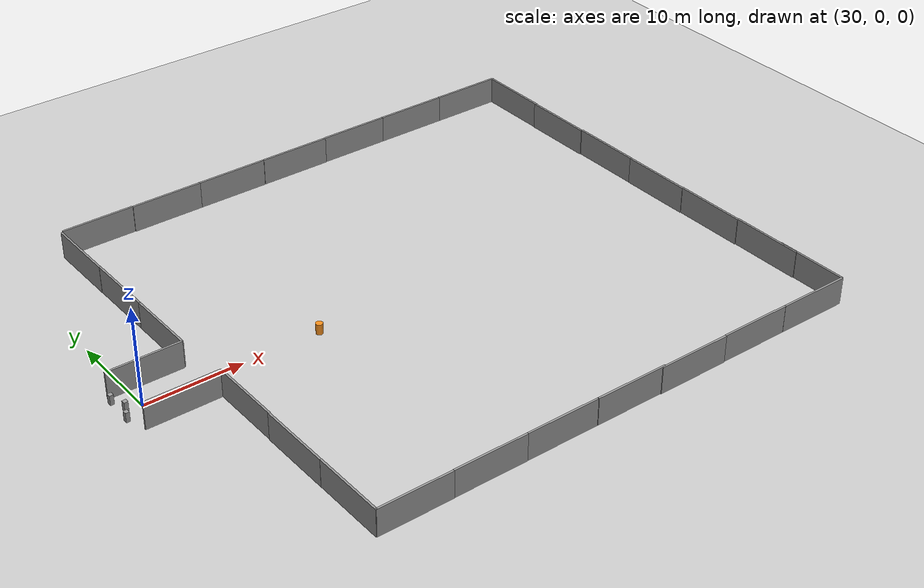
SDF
<sdf version="1.10">
 <world name="obstacle_corridor">
  <model name="ground_plane">
   <static>true</static>
   <link name="link">
    <collision name="collision">
     <geometry><plane><normal>0 0 1</normal><size>100 100</size></plane></geometry>
     <surface>
      <friction><ode><mu>1000</mu><mu2>1000</mu2><slip1>0</slip1><slip2>0</slip2></ode></friction>
     </surface>
    </collision>
    <visual name="visual">
     <cast_shadows>false</cast_shadows>
     <geometry><plane><normal>0 0 1</normal><size>100 100</size></plane></geometry>
     <material>
      <script><uri>file://media/materials/scripts/gazebo.material</uri><name>Gazebo/Grey</name></script>
     </material>
    </visual>
    <inertial>
     <mass>1</mass>
     <inertia><ixx>1</ixx><ixy>0</ixy><ixz>0</ixz><iyy>1</iyy><iyz>0</iyz><izz>1</izz></inertia>
    </inertial>
   </link>
  </model>
  <model name="unit_box_0_clone_5_clone_1_clone_29">
   <static>true</static>
   <pose>28.594028472900391 0.31436690688133329 0.49999848008155823 -1.00000011660313e-06 -2.0000002349963946e-06 -0.00040800002556328429</pose>
   <link name="link">
    <inertial>
     <mass>1</mass>
     <inertia>
      <ixx>0.16666700000000001</ixx>
      <ixy>0</ixy>
      <ixz>0</ixz>
      <iyy>0.16666700000000001</iyy>
      <iyz>0</iyz>
      <izz>0.16666700000000001</izz>
     </inertia>
    </inertial>
    <collision name="collision">
     <geometry><box><size>0.392878 0.42264299999999999 1</size></box></geometry>
    </collision>
    <visual name="visual">
     <geometry><box><size>0.392878 0.42264299999999999 1</size></box></geometry>
     <material>
      <script><name>Gazebo/Grey</name><uri>file://media/materials/scripts/gazebo.material</uri></script>
     </material>
    </visual>
   </link>
   <static>true</static>
  </model>
  <model name="unit_box_0_clone_5_clone_1_clone_34">
   <static>true</static>
   <pose>28.064 1.8845099999999999 0.50000100000000003 2.0000001398299962e-06 1.00000006995503e-06 -0.00045800003202473651</pose>
   <link name="link">
    <inertial>
     <mass>1</mass>
     <inertia>
      <ixx>0.16666700000000001</ixx>
      <ixy>0</ixy>
      <ixz>0</ixz>
      <iyy>0.16666700000000001</iyy>
      <iyz>0</iyz>
      <izz>0.16666700000000001</izz>
     </inertia>
    </inertial>
    <collision name="collision">
     <geometry><box><size>0.392878 0.42264299999999999 1</size></box></geometry>
    </collision>
    <visual name="visual">
     <geometry><box><size>0.392878 0.42264299999999999 1</size></box></geometry>
     <material>
      <script><name>Gazebo/Grey</name><uri>file://media/materials/scripts/gazebo.material</uri></script>
     </material>
    </visual>
   </link>
   <static>true</static>
  </model>
  <model name="unit_box_0_clone_5_clone_1_clone_35">
   <static>true</static>
   <pose>28 -1 0.50000100000000003 -2.0000001472693401e-06 -3.460829797922343e-17 -0.00047000003460829554</pose>
   <link name="link">
    <inertial>
     <mass>1</mass>
     <inertia>
      <ixx>0.16666700000000001</ixx>
      <ixy>0</ixy>
      <ixz>0</ixz>
      <iyy>0.16666700000000001</iyy>
      <iyz>0</iyz>
      <izz>0.16666700000000001</izz>
     </inertia>
    </inertial>
    <collision name="collision">
     <geometry><box><size>0.392878 0.42264299999999999 1</size></box></geometry>
    </collision>
    <visual name="visual">
     <geometry><box><size>0.392878 0.42264299999999999 1</size></box></geometry>
     <material>
      <script><name>Gazebo/Grey</name><uri>file://media/materials/scripts/gazebo.material</uri></script>
     </material>
    </visual>
   </link>
   <static>true</static>
  </model>
  <model name="grey_wall_clone_0_clone">
   <static>true</static>
   <link name="link">
    <pose>0 0 1.3999999999999999 0 0 0</pose>
    <collision name="collision">
     <geometry><box><size>7.5 0.20000000000000001 2.7999999999999998</size></box></geometry>
    </collision>
    <visual name="visual">
     <cast_shadows>false</cast_shadows>
     <geometry><box><size>7.5 0.20000000000000001 2.7999999999999998</size></box></geometry>
     <material>
      <script><name>Gazebo/Grey</name><uri>file://media/materials/scripts/gazebo.material</uri></script>
     </material>
    </visual>
    <velocity_decay><linear>0</linear><angular>0</angular></velocity_decay>
    <inertial>
     <mass>1</mass>
     <inertia><ixx>1</ixx><ixy>0</ixy><ixz>0</ixz><iyy>1</iyy><iyz>0</iyz><izz>1</izz></inertia>
    </inertial>
   </link>
   <pose>32.404098510742188 -2.893721342086792 0 0 0 0</pose>
   <static>true</static>
  </model>
  <model name="grey_wall_clone_0_clone_0">
   <static>true</static>
   <link name="link">
    <pose>0 0 1.3999999999999999 0 0 0</pose>
    <collision name="collision">
     <geometry><box><size>7.5 0.20000000000000001 2.7999999999999998</size></box></geometry>
    </collision>
    <visual name="visual">
     <cast_shadows>false</cast_shadows>
     <geometry><box><size>7.5 0.20000000000000001 2.7999999999999998</size></box></geometry>
     <material>
      <script><name>Gazebo/Grey</name><uri>file://media/materials/scripts/gazebo.material</uri></script>
     </material>
    </visual>
    <velocity_decay><linear>0</linear><angular>0</angular></velocity_decay>
    <inertial>
     <mass>1</mass>
     <inertia><ixx>1</ixx><ixy>0</ixy><ixz>0</ixz><iyy>1</iyy><iyz>0</iyz><izz>1</izz></inertia>
    </inertial>
   </link>
   <pose>31.877399444580078 2.6612694263458252 0 0 0 0</pose>
   <static>true</static>
  </model>
  <model name="grey_wall_clone_0_clone_clone_8">
   <static>true</static>
   <link name="link">
    <pose>0 0 1.3999999999999999 0 0 0</pose>
    <collision name="collision">
     <geometry><box><size>7.5 0.20000000000000001 2.7999999999999998</size></box></geometry>
    </collision>
    <visual name="visual">
     <cast_shadows>false</cast_shadows>
     <geometry><box><size>7.5 0.20000000000000001 2.7999999999999998</size></box></geometry>
     <material>
      <script><name>Gazebo/Grey</name><uri>file://media/materials/scripts/gazebo.material</uri></script>
     </material>
    </visual>
    <velocity_decay><linear>0</linear><angular>0</angular></velocity_decay>
    <inertial>
     <mass>1</mass>
     <inertia><ixx>1</ixx><ixy>0</ixy><ixz>0</ixz><iyy>1</iyy><iyz>0</iyz><izz>1</izz></inertia>
    </inertial>
   </link>
   <pose>39.402801513671875 25.036117553710938 0 0 0 0</pose>
   <static>true</static>
  </model>
  <model name="grey_wall_clone_0_clone_clone_8_clone">
   <static>true</static>
   <link name="link">
    <pose>0 0 1.3999999999999999 0 0 0</pose>
    <collision name="collision">
     <geometry><box><size>7.5 0.20000000000000001 2.7999999999999998</size></box></geometry>
    </collision>
    <visual name="visual">
     <cast_shadows>false</cast_shadows>
     <geometry><box><size>7.5 0.20000000000000001 2.7999999999999998</size></box></geometry>
     <material>
      <script><name>Gazebo/Grey</name><uri>file://media/materials/scripts/gazebo.material</uri></script>
     </material>
    </visual>
    <velocity_decay><linear>0</linear><angular>0</angular></velocity_decay>
    <inertial>
     <mass>1</mass>
     <inertia><ixx>1</ixx><ixy>0</ixy><ixz>0</ixz><iyy>1</iyy><iyz>0</iyz><izz>1</izz></inertia>
    </inertial>
   </link>
   <pose>36.184940338134773 -6.6376538276672372 0 0 0 -1.5642899622558528</pose>
   <static>true</static>
  </model>
  <model name="goal_marker">
   <static>true</static>
   <link name="link_0">
    <inertial>
     <mass>100</mass>
     <inertia>
      <ixx>0.37079600000000001</ixx>
      <ixy>0</ixy>
      <ixz>0</ixz>
      <iyy>0.37079600000000001</iyy>
      <iyz>0</iyz>
      <izz>0.0617961</izz>
     </inertia>
    </inertial>
    <visual name="visual">
     <geometry>
      <cylinder><radius>0.35165099999999999</radius><length>2.0202399999999998</length></cylinder>
     </geometry>
     <material>
      <lighting>true</lighting>
      <script><uri>file://media/materials/scripts/gazebo.material</uri><name>Gazebo/Orange</name></script>
      <ambient>1 0.600000024 0 1</ambient>
      <diffuse>1 0.600000024 0 1</diffuse>
      <specular>1 0.610000014 0 1</specular>
      <emissive>0 0 0 1</emissive>
      <shader type="vertex"><normal_map>__default__</normal_map></shader>
     </material>
    </visual>
    <collision name="collision">
     <geometry>
      <cylinder><radius>0.35165099999999999</radius><length>2.0202399999999998</length></cylinder>
     </geometry>
     <surface>
      <friction>
       <ode><mu>100</mu><mu2>100</mu2><fdir1>0 0 0</fdir1><slip1>0</slip1><slip2>0</slip2></ode>
       <torsional>
        <coefficient>1</coefficient>
        <patch_radius>0</patch_radius>
        <surface_radius>0</surface_radius>
        <use_patch_radius>true</use_patch_radius>
        <ode><slip>0</slip></ode>
       </torsional>
      </friction>
      <bounce><restitution_coefficient>1</restitution_coefficient><threshold>1000000</threshold></bounce>
      <contact>
       <collide_without_contact>false</collide_without_contact>
       <collide_without_contact_bitmask>1</collide_without_contact_bitmask>
       <collide_bitmask>1</collide_bitmask>
       <ode>
        <soft_cfm>0</soft_cfm>
        <soft_erp>0.20000000000000001</soft_erp>
        <kp>10000000000000</kp>
        <kd>1</kd>
        <max_vel>0.01</max_vel>
        <min_depth>0</min_depth>
       </ode>
       <bullet>
        <split_impulse>true</split_impulse>
        <split_impulse_penetration_threshold>-0.01</split_impulse_penetration_threshold>
        <soft_cfm>0</soft_cfm>
        <soft_erp>0.20000000000000001</soft_erp>
        <kp>10000000000000</kp>
        <kd>1</kd>
       </bullet>
      </contact>
     </surface>
    </collision>
   </link>
   <static>true</static>
   <pose>47.877099999999999 -0.12851199999999999 0 0 0 0</pose>
   <plugin filename="gz-sim-pose-publisher-system" name="gz::sim::systems::PosePublisher">
    <publish_model_pose>true</publish_model_pose>
    <use_pose_vector_msg>true</use_pose_vector_msg>
   </plugin>
  </model>
  <model name="grey_wall_clone_0_clone_clone_8_clone_1">
   <static>true</static>
   <link name="link">
    <pose>0 0 1.3999999999999999 0 0 0</pose>
    <collision name="collision">
     <geometry><box><size>7.5 0.20000000000000001 2.7999999999999998</size></box></geometry>
    </collision>
    <visual name="visual">
     <cast_shadows>false</cast_shadows>
     <geometry><box><size>7.5 0.20000000000000001 2.7999999999999998</size></box></geometry>
     <material>
      <script><name>Gazebo/Grey</name><uri>file://media/materials/scripts/gazebo.material</uri></script>
     </material>
    </visual>
    <velocity_decay><linear>0</linear><angular>0</angular></velocity_decay>
    <inertial>
     <mass>1</mass>
     <inertia><ixx>1</ixx><ixy>0</ixy><ixz>0</ixz><iyy>1</iyy><iyz>0</iyz><izz>1</izz></inertia>
    </inertial>
   </link>
   <pose>36.186372129434332 -14.042554693693814 0 0 0 -1.5642899622558528</pose>
   <static>true</static>
  </model>
  <model name="grey_wall_clone_0_clone_clone_8_clone_2">
   <static>true</static>
   <link name="link">
    <pose>0 0 1.3999999999999999 0 0 0</pose>
    <collision name="collision">
     <geometry><box><size>7.5 0.20000000000000001 2.7999999999999998</size></box></geometry>
    </collision>
    <visual name="visual">
     <cast_shadows>false</cast_shadows>
     <geometry><box><size>7.5 0.20000000000000001 2.7999999999999998</size></box></geometry>
     <material>
      <script><name>Gazebo/Grey</name><uri>file://media/materials/scripts/gazebo.material</uri></script>
     </material>
    </visual>
    <velocity_decay><linear>0</linear><angular>0</angular></velocity_decay>
    <inertial>
     <mass>1</mass>
     <inertia><ixx>1</ixx><ixy>0</ixy><ixz>0</ixz><iyy>1</iyy><iyz>0</iyz><izz>1</izz></inertia>
    </inertial>
   </link>
   <pose>36.24725069981757 -21.507783708370127 0 0 0 -1.5642899622558528</pose>
   <static>true</static>
  </model>
  <model name="grey_wall_clone_0_clone_clone_8_clone_3">
   <static>true</static>
   <link name="link">
    <pose>0 0 1.3999999999999999 0 0 0</pose>
    <collision name="collision">
     <geometry><box><size>7.5 0.20000000000000001 2.7999999999999998</size></box></geometry>
    </collision>
    <visual name="visual">
     <cast_shadows>false</cast_shadows>
     <geometry><box><size>7.5 0.20000000000000001 2.7999999999999998</size></box></geometry>
     <material>
      <script><name>Gazebo/Grey</name><uri>file://media/materials/scripts/gazebo.material</uri></script>
     </material>
    </visual>
    <velocity_decay><linear>0</linear><angular>0</angular></velocity_decay>
    <inertial>
     <mass>1</mass>
     <inertia><ixx>1</ixx><ixy>0</ixy><ixz>0</ixz><iyy>1</iyy><iyz>0</iyz><izz>1</izz></inertia>
    </inertial>
   </link>
   <pose>35.602382632889125 6.355323541477623 0 0 0 -1.5642899622558528</pose>
   <static>true</static>
  </model>
  <model name="grey_wall_clone_0_clone_clone_8_clone_4">
   <static>true</static>
   <link name="link">
    <pose>0 0 1.3999999999999999 0 0 0</pose>
    <collision name="collision">
     <geometry><box><size>7.5 0.20000000000000001 2.7999999999999998</size></box></geometry>
    </collision>
    <visual name="visual">
     <cast_shadows>false</cast_shadows>
     <geometry><box><size>7.5 0.20000000000000001 2.7999999999999998</size></box></geometry>
     <material>
      <script><name>Gazebo/Grey</name><uri>file://media/materials/scripts/gazebo.material</uri></script>
     </material>
    </visual>
    <velocity_decay><linear>0</linear><angular>0</angular></velocity_decay>
    <inertial>
     <mass>1</mass>
     <inertia><ixx>1</ixx><ixy>0</ixy><ixz>0</ixz><iyy>1</iyy><iyz>0</iyz><izz>1</izz></inertia>
    </inertial>
   </link>
   <pose>35.560343570276032 13.684559148123299 0 0 0 -1.5642899622558528</pose>
   <static>true</static>
  </model>
  <model name="grey_wall_clone_0_clone_clone_8_clone_5">
   <static>true</static>
   <link name="link">
    <pose>0 0 1.3999999999999999 0 0 0</pose>
    <collision name="collision">
     <geometry><box><size>7.5 0.20000000000000001 2.7999999999999998</size></box></geometry>
    </collision>
    <visual name="visual">
     <cast_shadows>false</cast_shadows>
     <geometry><box><size>7.5 0.20000000000000001 2.7999999999999998</size></box></geometry>
     <material>
      <script><name>Gazebo/Grey</name><uri>file://media/materials/scripts/gazebo.material</uri></script>
     </material>
    </visual>
    <velocity_decay><linear>0</linear><angular>0</angular></velocity_decay>
    <inertial>
     <mass>1</mass>
     <inertia><ixx>1</ixx><ixy>0</ixy><ixz>0</ixz><iyy>1</iyy><iyz>0</iyz><izz>1</izz></inertia>
    </inertial>
   </link>
   <pose>35.495215749278742 21.096955424359148 0 0 0 -1.5642899622558528</pose>
   <static>true</static>
  </model>
  <model name="grey_wall_clone_0_clone_clone_8_1">
   <static>true</static>
   <link name="link">
    <pose>0 0 1.3999999999999999 0 0 0</pose>
    <collision name="collision">
     <geometry><box><size>7.5 0.20000000000000001 2.7999999999999998</size></box></geometry>
    </collision>
    <visual name="visual">
     <cast_shadows>false</cast_shadows>
     <geometry><box><size>7.5 0.20000000000000001 2.7999999999999998</size></box></geometry>
     <material>
      <script><name>Gazebo/Grey</name><uri>file://media/materials/scripts/gazebo.material</uri></script>
     </material>
    </visual>
    <velocity_decay><linear>0</linear><angular>0</angular></velocity_decay>
    <inertial>
     <mass>1</mass>
     <inertia><ixx>1</ixx><ixy>0</ixy><ixz>0</ixz><iyy>1</iyy><iyz>0</iyz><izz>1</izz></inertia>
    </inertial>
   </link>
   <pose>39.97553769442861 -25.188474336106179 0 0 0 0</pose>
   <static>true</static>
  </model>
  <model name="grey_wall_clone_0_clone_clone_8_2">
   <static>true</static>
   <link name="link">
    <pose>0 0 1.3999999999999999 0 0 0</pose>
    <collision name="collision">
     <geometry><box><size>7.5 0.20000000000000001 2.7999999999999998</size></box></geometry>
    </collision>
    <visual name="visual">
     <cast_shadows>false</cast_shadows>
     <geometry><box><size>7.5 0.20000000000000001 2.7999999999999998</size></box></geometry>
     <material>
      <script><name>Gazebo/Grey</name><uri>file://media/materials/scripts/gazebo.material</uri></script>
     </material>
    </visual>
    <velocity_decay><linear>0</linear><angular>0</angular></velocity_decay>
    <inertial>
     <mass>1</mass>
     <inertia><ixx>1</ixx><ixy>0</ixy><ixz>0</ixz><iyy>1</iyy><iyz>0</iyz><izz>1</izz></inertia>
    </inertial>
   </link>
   <pose>47.455589566717741 -25.154002027202246 0 0 0 0</pose>
   <static>true</static>
  </model>
  <model name="grey_wall_clone_0_clone_clone_8_3">
   <static>true</static>
   <link name="link">
    <pose>0 0 1.3999999999999999 0 0 0</pose>
    <collision name="collision">
     <geometry><box><size>7.5 0.20000000000000001 2.7999999999999998</size></box></geometry>
    </collision>
    <visual name="visual">
     <cast_shadows>false</cast_shadows>
     <geometry><box><size>7.5 0.20000000000000001 2.7999999999999998</size></box></geometry>
     <material>
      <script><name>Gazebo/Grey</name><uri>file://media/materials/scripts/gazebo.material</uri></script>
     </material>
    </visual>
    <velocity_decay><linear>0</linear><angular>0</angular></velocity_decay>
    <inertial>
     <mass>1</mass>
     <inertia><ixx>1</ixx><ixy>0</ixy><ixz>0</ixz><iyy>1</iyy><iyz>0</iyz><izz>1</izz></inertia>
    </inertial>
   </link>
   <pose>54.965088535762213 -25.139461892328967 0 0 0 0</pose>
   <static>true</static>
  </model>
  <model name="grey_wall_clone_0_clone_clone_8_4">
   <static>true</static>
   <link name="link">
    <pose>0 0 1.3999999999999999 0 0 0</pose>
    <collision name="collision">
     <geometry><box><size>7.5 0.20000000000000001 2.7999999999999998</size></box></geometry>
    </collision>
    <visual name="visual">
     <cast_shadows>false</cast_shadows>
     <geometry><box><size>7.5 0.20000000000000001 2.7999999999999998</size></box></geometry>
     <material>
      <script><name>Gazebo/Grey</name><uri>file://media/materials/scripts/gazebo.material</uri></script>
     </material>
    </visual>
    <velocity_decay><linear>0</linear><angular>0</angular></velocity_decay>
    <inertial>
     <mass>1</mass>
     <inertia><ixx>1</ixx><ixy>0</ixy><ixz>0</ixz><iyy>1</iyy><iyz>0</iyz><izz>1</izz></inertia>
    </inertial>
   </link>
   <pose>62.519737384477864 -25.146194882232436 0 0 0 0</pose>
   <static>true</static>
  </model>
  <model name="grey_wall_clone_0_clone_clone_8_5">
   <static>true</static>
   <link name="link">
    <pose>0 0 1.3999999999999999 0 0 0</pose>
    <collision name="collision">
     <geometry><box><size>7.5 0.20000000000000001 2.7999999999999998</size></box></geometry>
    </collision>
    <visual name="visual">
     <cast_shadows>false</cast_shadows>
     <geometry><box><size>7.5 0.20000000000000001 2.7999999999999998</size></box></geometry>
     <material>
      <script><name>Gazebo/Grey</name><uri>file://media/materials/scripts/gazebo.material</uri></script>
     </material>
    </visual>
    <velocity_decay><linear>0</linear><angular>0</angular></velocity_decay>
    <inertial>
     <mass>1</mass>
     <inertia><ixx>1</ixx><ixy>0</ixy><ixz>0</ixz><iyy>1</iyy><iyz>0</iyz><izz>1</izz></inertia>
    </inertial>
   </link>
   <pose>69.649595064004316 -25.219802678683632 0 0 0 0</pose>
   <static>true</static>
  </model>
  <model name="grey_wall_clone_0_clone_clone_8_6">
   <static>true</static>
   <link name="link">
    <pose>0 0 1.3999999999999999 0 0 0</pose>
    <collision name="collision">
     <geometry><box><size>7.5 0.20000000000000001 2.7999999999999998</size></box></geometry>
    </collision>
    <visual name="visual">
     <cast_shadows>false</cast_shadows>
     <geometry><box><size>7.5 0.20000000000000001 2.7999999999999998</size></box></geometry>
     <material>
      <script><name>Gazebo/Grey</name><uri>file://media/materials/scripts/gazebo.material</uri></script>
     </material>
    </visual>
    <velocity_decay><linear>0</linear><angular>0</angular></velocity_decay>
    <inertial>
     <mass>1</mass>
     <inertia><ixx>1</ixx><ixy>0</ixy><ixz>0</ixz><iyy>1</iyy><iyz>0</iyz><izz>1</izz></inertia>
    </inertial>
   </link>
   <pose>77.125394491124695 -25.159173703871375 0 0 0 0</pose>
   <static>true</static>
  </model>
  <model name="grey_wall_clone_0_clone_clone_8_7">
   <static>true</static>
   <link name="link">
    <pose>0 0 1.3999999999999999 0 0 0</pose>
    <collision name="collision">
     <geometry><box><size>7.5 0.20000000000000001 2.7999999999999998</size></box></geometry>
    </collision>
    <visual name="visual">
     <cast_shadows>false</cast_shadows>
     <geometry><box><size>7.5 0.20000000000000001 2.7999999999999998</size></box></geometry>
     <material>
      <script><name>Gazebo/Grey</name><uri>file://media/materials/scripts/gazebo.material</uri></script>
     </material>
    </visual>
    <velocity_decay><linear>0</linear><angular>0</angular></velocity_decay>
    <inertial>
     <mass>1</mass>
     <inertia><ixx>1</ixx><ixy>0</ixy><ixz>0</ixz><iyy>1</iyy><iyz>0</iyz><izz>1</izz></inertia>
    </inertial>
   </link>
   <pose>84.534891367756813 -25.171323481702707 0 0 0 0</pose>
   <static>true</static>
  </model>
  <model name="grey_wall_clone_0_clone_clone_8_8">
   <static>true</static>
   <link name="link">
    <pose>0 0 1.3999999999999999 0 0 0</pose>
    <collision name="collision">
     <geometry><box><size>7.5 0.20000000000000001 2.7999999999999998</size></box></geometry>
    </collision>
    <visual name="visual">
     <cast_shadows>false</cast_shadows>
     <geometry><box><size>7.5 0.20000000000000001 2.7999999999999998</size></box></geometry>
     <material>
      <script><name>Gazebo/Grey</name><uri>file://media/materials/scripts/gazebo.material</uri></script>
     </material>
    </visual>
    <velocity_decay><linear>0</linear><angular>0</angular></velocity_decay>
    <inertial>
     <mass>1</mass>
     <inertia><ixx>1</ixx><ixy>0</ixy><ixz>0</ixz><iyy>1</iyy><iyz>0</iyz><izz>1</izz></inertia>
    </inertial>
   </link>
   <pose>46.854762329814719 24.97766603985675 0 0 0 0</pose>
   <static>true</static>
  </model>
  <model name="grey_wall_clone_0_clone_clone_8_9">
   <static>true</static>
   <link name="link">
    <pose>0 0 1.3999999999999999 0 0 0</pose>
    <collision name="collision">
     <geometry><box><size>7.5 0.20000000000000001 2.7999999999999998</size></box></geometry>
    </collision>
    <visual name="visual">
     <cast_shadows>false</cast_shadows>
     <geometry><box><size>7.5 0.20000000000000001 2.7999999999999998</size></box></geometry>
     <material>
      <script><name>Gazebo/Grey</name><uri>file://media/materials/scripts/gazebo.material</uri></script>
     </material>
    </visual>
    <velocity_decay><linear>0</linear><angular>0</angular></velocity_decay>
    <inertial>
     <mass>1</mass>
     <inertia><ixx>1</ixx><ixy>0</ixy><ixz>0</ixz><iyy>1</iyy><iyz>0</iyz><izz>1</izz></inertia>
    </inertial>
   </link>
   <pose>54.286987602219746 24.987422211735318 0 0 0 0</pose>
   <static>true</static>
  </model>
  <model name="grey_wall_clone_0_clone_clone_8_10">
   <static>true</static>
   <link name="link">
    <pose>0 0 1.3999999999999999 0 0 0</pose>
    <collision name="collision">
     <geometry><box><size>7.5 0.20000000000000001 2.7999999999999998</size></box></geometry>
    </collision>
    <visual name="visual">
     <cast_shadows>false</cast_shadows>
     <geometry><box><size>7.5 0.20000000000000001 2.7999999999999998</size></box></geometry>
     <material>
      <script><name>Gazebo/Grey</name><uri>file://media/materials/scripts/gazebo.material</uri></script>
     </material>
    </visual>
    <velocity_decay><linear>0</linear><angular>0</angular></velocity_decay>
    <inertial>
     <mass>1</mass>
     <inertia><ixx>1</ixx><ixy>0</ixy><ixz>0</ixz><iyy>1</iyy><iyz>0</iyz><izz>1</izz></inertia>
    </inertial>
   </link>
   <pose>61.815152514635777 25.001272669080159 0 0 0 0</pose>
   <static>true</static>
  </model>
  <model name="grey_wall_clone_0_clone_clone_8_11">
   <static>true</static>
   <link name="link">
    <pose>0 0 1.3999999999999999 0 0 0</pose>
    <collision name="collision">
     <geometry><box><size>7.5 0.20000000000000001 2.7999999999999998</size></box></geometry>
    </collision>
    <visual name="visual">
     <cast_shadows>false</cast_shadows>
     <geometry><box><size>7.5 0.20000000000000001 2.7999999999999998</size></box></geometry>
     <material>
      <script><name>Gazebo/Grey</name><uri>file://media/materials/scripts/gazebo.material</uri></script>
     </material>
    </visual>
    <velocity_decay><linear>0</linear><angular>0</angular></velocity_decay>
    <inertial>
     <mass>1</mass>
     <inertia><ixx>1</ixx><ixy>0</ixy><ixz>0</ixz><iyy>1</iyy><iyz>0</iyz><izz>1</izz></inertia>
    </inertial>
   </link>
   <pose>69.233370038524612 25.04212248255465 0 0 0 0</pose>
   <static>true</static>
  </model>
  <model name="grey_wall_clone_0_clone_clone_8_12">
   <static>true</static>
   <link name="link">
    <pose>0 0 1.3999999999999999 0 0 0</pose>
    <collision name="collision">
     <geometry><box><size>7.5 0.20000000000000001 2.7999999999999998</size></box></geometry>
    </collision>
    <visual name="visual">
     <cast_shadows>false</cast_shadows>
     <geometry><box><size>7.5 0.20000000000000001 2.7999999999999998</size></box></geometry>
     <material>
      <script><name>Gazebo/Grey</name><uri>file://media/materials/scripts/gazebo.material</uri></script>
     </material>
    </visual>
    <velocity_decay><linear>0</linear><angular>0</angular></velocity_decay>
    <inertial>
     <mass>1</mass>
     <inertia><ixx>1</ixx><ixy>0</ixy><ixz>0</ixz><iyy>1</iyy><iyz>0</iyz><izz>1</izz></inertia>
    </inertial>
   </link>
   <pose>76.628391023459741 25.038293147873155 0 0 0 0</pose>
   <static>true</static>
  </model>
  <model name="grey_wall_clone_0_clone_clone_8_13">
   <static>true</static>
   <link name="link">
    <pose>0 0 1.3999999999999999 0 0 0</pose>
    <collision name="collision">
     <geometry><box><size>7.5 0.20000000000000001 2.7999999999999998</size></box></geometry>
    </collision>
    <visual name="visual">
     <cast_shadows>false</cast_shadows>
     <geometry><box><size>7.5 0.20000000000000001 2.7999999999999998</size></box></geometry>
     <material>
      <script><name>Gazebo/Grey</name><uri>file://media/materials/scripts/gazebo.material</uri></script>
     </material>
    </visual>
    <velocity_decay><linear>0</linear><angular>0</angular></velocity_decay>
    <inertial>
     <mass>1</mass>
     <inertia><ixx>1</ixx><ixy>0</ixy><ixz>0</ixz><iyy>1</iyy><iyz>0</iyz><izz>1</izz></inertia>
    </inertial>
   </link>
   <pose>84.106047201700989 25.040305927669426 0 0 0 0</pose>
   <static>true</static>
  </model>
  <model name="grey_wall_clone_0_clone_clone_8_clone_5_1">
   <static>true</static>
   <link name="link">
    <pose>0 0 1.3999999999999999 0 0 0</pose>
    <collision name="collision">
     <geometry><box><size>7.5 0.20000000000000001 2.7999999999999998</size></box></geometry>
    </collision>
    <visual name="visual">
     <cast_shadows>false</cast_shadows>
     <geometry><box><size>7.5 0.20000000000000001 2.7999999999999998</size></box></geometry>
     <material>
      <script><name>Gazebo/Grey</name><uri>file://media/materials/scripts/gazebo.material</uri></script>
     </material>
    </visual>
    <velocity_decay><linear>0</linear><angular>0</angular></velocity_decay>
    <inertial>
     <mass>1</mass>
     <inertia><ixx>1</ixx><ixy>0</ixy><ixz>0</ixz><iyy>1</iyy><iyz>0</iyz><izz>1</izz></inertia>
    </inertial>
   </link>
   <pose>87.753899688978223 21.249259711912519 0 0 0 -1.5642899622558528</pose>
   <static>true</static>
  </model>
  <model name="grey_wall_clone_0_clone_clone_8_clone_5_2">
   <static>true</static>
   <link name="link">
    <pose>0 0 1.3999999999999999 0 0 0</pose>
    <collision name="collision">
     <geometry><box><size>7.5 0.20000000000000001 2.7999999999999998</size></box></geometry>
    </collision>
    <visual name="visual">
     <cast_shadows>false</cast_shadows>
     <geometry><box><size>7.5 0.20000000000000001 2.7999999999999998</size></box></geometry>
     <material>
      <script><name>Gazebo/Grey</name><uri>file://media/materials/scripts/gazebo.material</uri></script>
     </material>
    </visual>
    <velocity_decay><linear>0</linear><angular>0</angular></velocity_decay>
    <inertial>
     <mass>1</mass>
     <inertia><ixx>1</ixx><ixy>0</ixy><ixz>0</ixz><iyy>1</iyy><iyz>0</iyz><izz>1</izz></inertia>
    </inertial>
   </link>
   <pose>87.743780528244855 13.876129209104002 0 0 0 -1.5642899622558528</pose>
   <static>true</static>
  </model>
  <model name="grey_wall_clone_0_clone_clone_8_clone_5_3">
   <static>true</static>
   <link name="link">
    <pose>0 0 1.3999999999999999 0 0 0</pose>
    <collision name="collision">
     <geometry><box><size>7.5 0.20000000000000001 2.7999999999999998</size></box></geometry>
    </collision>
    <visual name="visual">
     <cast_shadows>false</cast_shadows>
     <geometry><box><size>7.5 0.20000000000000001 2.7999999999999998</size></box></geometry>
     <material>
      <script><name>Gazebo/Grey</name><uri>file://media/materials/scripts/gazebo.material</uri></script>
     </material>
    </visual>
    <velocity_decay><linear>0</linear><angular>0</angular></velocity_decay>
    <inertial>
     <mass>1</mass>
     <inertia><ixx>1</ixx><ixy>0</ixy><ixz>0</ixz><iyy>1</iyy><iyz>0</iyz><izz>1</izz></inertia>
    </inertial>
   </link>
   <pose>87.880658032097827 6.4171623877964841 0 0 0 -1.5642899622558528</pose>
   <static>true</static>
  </model>
  <model name="grey_wall_clone_0_clone_clone_8_clone_5_4">
   <static>true</static>
   <link name="link">
    <pose>0 0 1.3999999999999999 0 0 0</pose>
    <collision name="collision">
     <geometry><box><size>7.5 0.20000000000000001 2.7999999999999998</size></box></geometry>
    </collision>
    <visual name="visual">
     <cast_shadows>false</cast_shadows>
     <geometry><box><size>7.5 0.20000000000000001 2.7999999999999998</size></box></geometry>
     <material>
      <script><name>Gazebo/Grey</name><uri>file://media/materials/scripts/gazebo.material</uri></script>
     </material>
    </visual>
    <velocity_decay><linear>0</linear><angular>0</angular></velocity_decay>
    <inertial>
     <mass>1</mass>
     <inertia><ixx>1</ixx><ixy>0</ixy><ixz>0</ixz><iyy>1</iyy><iyz>0</iyz><izz>1</izz></inertia>
    </inertial>
   </link>
   <pose>87.897828557951215 -1.0427986606671862 0 0 0 -1.5642899622558528</pose>
   <static>true</static>
  </model>
  <model name="grey_wall_clone_0_clone_clone_8_clone_5_5">
   <static>true</static>
   <link name="link">
    <pose>0 0 1.3999999999999999 0 0 0</pose>
    <collision name="collision">
     <geometry><box><size>7.5 0.20000000000000001 2.7999999999999998</size></box></geometry>
    </collision>
    <visual name="visual">
     <cast_shadows>false</cast_shadows>
     <geometry><box><size>7.5 0.20000000000000001 2.7999999999999998</size></box></geometry>
     <material>
      <script><name>Gazebo/Grey</name><uri>file://media/materials/scripts/gazebo.material</uri></script>
     </material>
    </visual>
    <velocity_decay><linear>0</linear><angular>0</angular></velocity_decay>
    <inertial>
     <mass>1</mass>
     <inertia><ixx>1</ixx><ixy>0</ixy><ixz>0</ixz><iyy>1</iyy><iyz>0</iyz><izz>1</izz></inertia>
    </inertial>
   </link>
   <pose>88.00727228728266 -8.4974894016104372 0 0 0 -1.5642899622558528</pose>
   <static>true</static>
  </model>
  <model name="grey_wall_clone_0_clone_clone_8_clone_5_6">
   <static>true</static>
   <link name="link">
    <pose>0 0 1.3999999999999999 0 0 0</pose>
    <collision name="collision">
     <geometry><box><size>7.5 0.20000000000000001 2.7999999999999998</size></box></geometry>
    </collision>
    <visual name="visual">
     <cast_shadows>false</cast_shadows>
     <geometry><box><size>7.5 0.20000000000000001 2.7999999999999998</size></box></geometry>
     <material>
      <script><name>Gazebo/Grey</name><uri>file://media/materials/scripts/gazebo.material</uri></script>
     </material>
    </visual>
    <velocity_decay><linear>0</linear><angular>0</angular></velocity_decay>
    <inertial>
     <mass>1</mass>
     <inertia><ixx>1</ixx><ixy>0</ixy><ixz>0</ixz><iyy>1</iyy><iyz>0</iyz><izz>1</izz></inertia>
    </inertial>
   </link>
   <pose>88.130399911283618 -15.952261548649757 0 0 0 -1.5642899622558528</pose>
   <static>true</static>
  </model>
  <model name="grey_wall_clone_0_clone_clone_8_clone_5_7">
   <static>true</static>
   <link name="link">
    <pose>0 0 1.3999999999999999 0 0 0</pose>
    <collision name="collision">
     <geometry><box><size>7.5 0.20000000000000001 2.7999999999999998</size></box></geometry>
    </collision>
    <visual name="visual">
     <cast_shadows>false</cast_shadows>
     <geometry><box><size>7.5 0.20000000000000001 2.7999999999999998</size></box></geometry>
     <material>
      <script><name>Gazebo/Grey</name><uri>file://media/materials/scripts/gazebo.material</uri></script>
     </material>
    </visual>
    <velocity_decay><linear>0</linear><angular>0</angular></velocity_decay>
    <inertial>
     <mass>1</mass>
     <inertia><ixx>1</ixx><ixy>0</ixy><ixz>0</ixz><iyy>1</iyy><iyz>0</iyz><izz>1</izz></inertia>
    </inertial>
   </link>
   <pose>88.23984619510361 -21.419045016282265 0 0 0 -1.5642899622558528</pose>
   <static>true</static>
  </model>
 </world>
</sdf>
